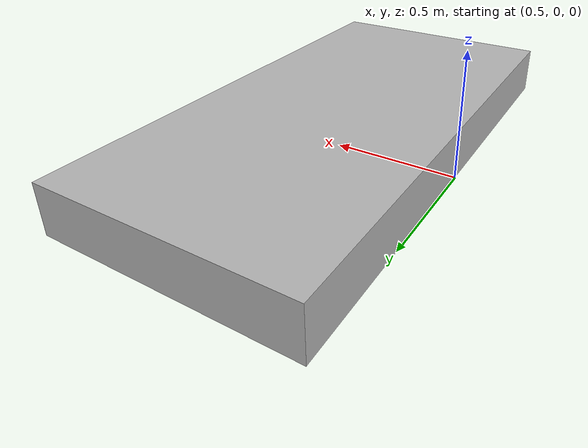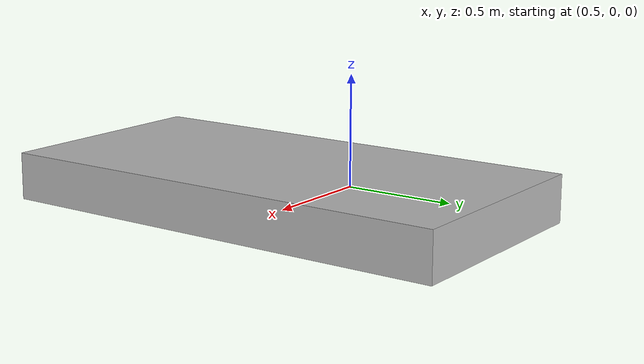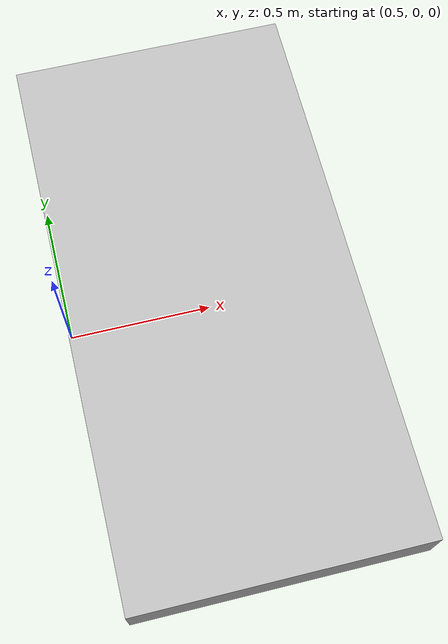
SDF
<?xml version="1.0"?>
<sdf version="1.4">
  <model name="platform_0.2">
    <pose>1.0 0 0.1 0 0 0</pose>
    <static>true</static>

    <link name="platform">
      <visual name="platform_visual">
        <pose>0 0 0 0 0 0</pose>
        <geometry>
          <box>
            <size>1 2 0.2</size>
          </box>
        </geometry>
      </visual>
      <collision name="platform_collision">
        <pose>0 0 0 0 0 0</pose>
        <geometry>
          <box>
            <size>1 2 0.2</size>
          </box>
        </geometry>
      </collision>
    </link>

  </model>
</sdf>
